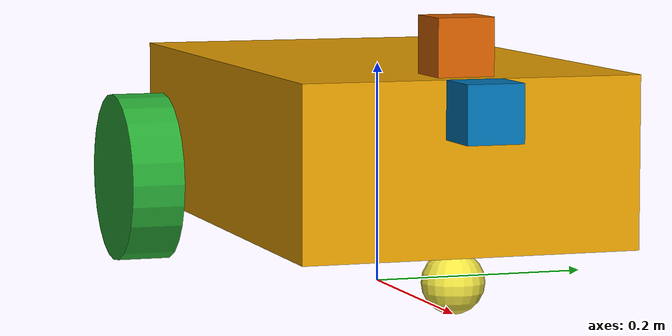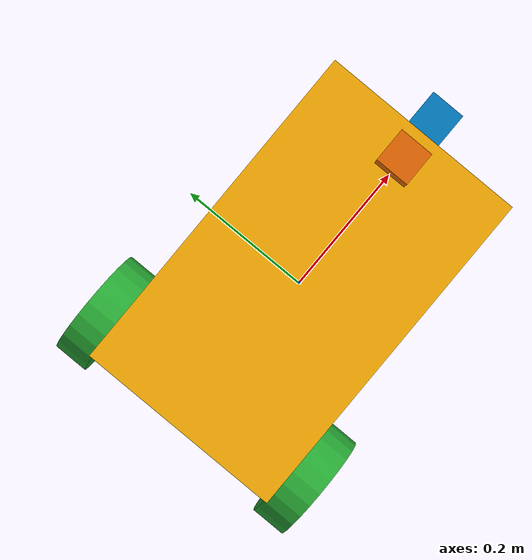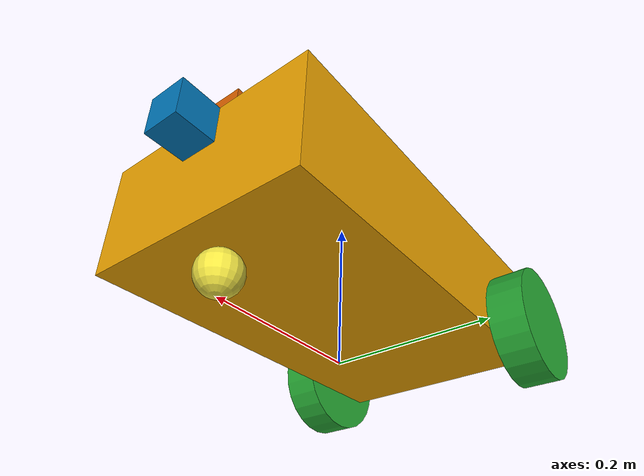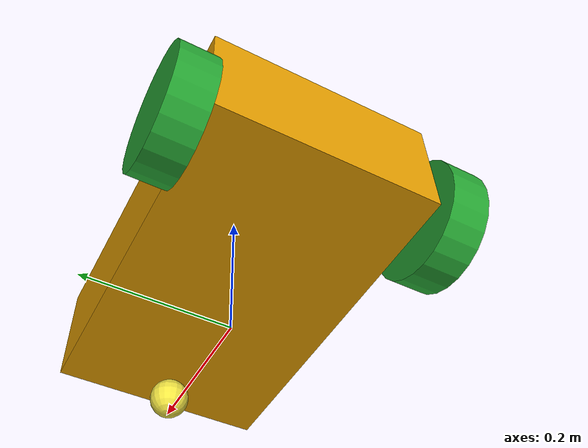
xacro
<?xml version="1.0"?>
<robot xmlns:xacro="http://www.ros.org/wiki/xacro" name="malight">

  <xacro:property name="base_link_height" value="0.15" />
  <xacro:property name="wheel_radius" value="0.08" />
  <xacro:property name="wheel_length" value="0.05" />
  <xacro:property name="camera_link" value="0.05" /> <!-- Size of square 'camera' box -->
  <xacro:property name="laser_link" value="0.05" /> <!-- Size of square 'laser' box -->

  <xacro:macro name="box_inertial_matrix" params="mass w h d">
    <inertial>
      <mass value="${mass}" />
      <inertia ixx="${mass*((h*h)+(d*d))/12}" ixy="0.0" ixz="0.0" iyy="${mass*((w*w)+(d*d))/12}" iyz="0.0" izz="${mass*((w*w)+(h*h))/12}" />
    </inertial>
  </xacro:macro>

  <xacro:macro name="cylinder_inertial_matrix" params="mass r h ">
    <inertial>
      <mass value="${mass}" />
      <inertia ixx="${mass*((3*r*r)+(h*h))/12.0}" ixy="0.0" ixz="0.0" iyy="${mass*((3*r*r)+(h*h))/12.0}" iyz="0.0" izz="${mass*r*r/12.0}" />
    </inertial>
  </xacro:macro>

  <xacro:macro name="sphere_inertial_matrix" params="mass r">
    <inertial>
      <mass value="${mass}" />
      <inertia ixx="${2*(mass*r*r)/5}" ixy="0.0" ixz="0.0" iyy="${2*(mass*r*r)/5}" iyz="0.0" izz="${2*(mass*r*r)/5}" />
    </inertial>
  </xacro:macro>

  <xacro:macro name="wheel" params="name z_offset l r mass">
    <link name="${name}">
      <visual>
      <origin xyz="0 0 ${z_offset}"/>
      <geometry>
        <cylinder length="${l}" radius="${r}" />
      </geometry>
      </visual>
      <collision>
        <origin xyz="0 0 ${z_offset}"/>
        <geometry>
          <cylinder length="${l}" radius="${r}" />
        </geometry>
      </collision>
      <xacro:cylinder_inertial_matrix mass="${mass}" r="${r}" h="${l}"/>
    </link>
  </xacro:macro>

  <link name="base_link">
    <visual>
    <origin xyz="0 0 ${(base_link_height/2.0)+(wheel_radius-0.025)}"/>
    <geometry>
      <box size="0.5 0.3 ${base_link_height}" />
    </geometry>
    </visual>
    <collision>
     <origin xyz="0 0 ${(base_link_height/2.0)+(wheel_radius-0.025)}"/>
     <geometry>
       <box size="0.5 0.3 ${base_link_height}" />
     </geometry>
   </collision>
   <xacro:box_inertial_matrix mass="1.5" w="0.5" h="0.3" d="0.15" />

  </link>

  <xacro:wheel name="left_wheel" z_offset="${wheel_length/2.0}" l="${wheel_length}" r="${wheel_radius}" mass="0.6" />

  <xacro:wheel name="right_wheel" z_offset="${wheel_length/2.0}" l="${wheel_length}" r="${wheel_radius}" mass="0.6" />

  <link name="caster_wheel">
      <visual>
      <origin xyz="0 0 0 "/>
      <geometry>
        <sphere radius="${ (((base_link_height/2.0)+(wheel_radius-0.025))/4)-0.005 }" />
      </geometry>
      </visual>
      <collision>
        <origin xyz="0 0 0"/>
        <geometry>
          <sphere radius="${ (((base_link_height/2.0)+(wheel_radius-0.025))/4)-0.005}" />
        </geometry>
        <surface>
          <friction>
            <ode>
              <mu>0.03</mu>
              <mu2>0.03</mu2>
            </ode>
          </friction>
        </surface>
      </collision>
  </link>

  <!-- Camera -->
  <link name="camera_link">
    <collision>
      <geometry>
      <box size="${camera_link} ${camera_link} ${camera_link}"/>
      </geometry>
    </collision>

    <visual>
      <origin xyz="0 0 0" rpy="0 0 0"/>
      <geometry>
      <box size="${camera_link} ${camera_link} ${camera_link}"/>
      </geometry>
    </visual>

    <inertial>
      <mass value="1e-5" />
      <inertia ixx="1e-6" ixy="0" ixz="0" iyy="1e-6" iyz="0" izz="1e-6" />
    </inertial>
  </link>

  <!-- Laser -->
  <link name='laser_link'>
      <collision>
      		<geometry>
        		<box size="${laser_link} ${laser_link} ${laser_link}"/>
      		</geometry>
      	</collision>
      	<inertial>
      		<mass value="0.5"/>
      		<origin xyz="0 0 0" rpy=" 0 0 0"/>
	      	<inertia ixx="1e-6" ixy="0.0" ixz="0" iyy="1e-6" iyz="0" izz="1e-6" />
     	</inertial>
    	<visual >
      		<origin xyz="0 0 0" rpy=" 0 0 0"/>
      		<geometry>
        		<box size="${laser_link} ${laser_link} ${laser_link}"/>
      		</geometry>
    	</visual>
      </link>

  <joint name="left_wheel_base" type="continuous">
    <parent link="base_link"/>
    <child link="left_wheel"/>
    <origin xyz="-0.2 0.15 ${(base_link_height/2.0)-0.05+(wheel_radius-0.025)}" rpy="-1.57 0 0"/>
    <axis xyz="0 0 1" />
  </joint>

  <joint name="right_wheel_base" type="continuous">
    <parent link="base_link"/>
    <child link="right_wheel"/>
    <origin xyz="-0.2 -0.2 ${(base_link_height/2.0)-0.05+(wheel_radius-0.025)}" rpy="-1.57 0 0"/>
    <axis xyz="0 0 1" />
  </joint>

  <joint name="caster_base" type="fixed">
    <parent link="base_link"/>
    <child link="caster_wheel"/>
    <origin xyz="0.2 0 ${ (((base_link_height/2.0)+(wheel_radius-0.025))-(base_link_height/2))/2 }" />
    <axis xyz="0 0 1" />
  </joint>

  <joint name="camera_joint" type="fixed">
    <axis xyz="0 1 0" />
    <origin xyz=" 0.275 0 0.18" rpy="0 0 0"/>
    <parent link="base_link"/>
    <child link="camera_link"/>
  </joint>

  <joint name="laser_joint" type="fixed">
    <axis xyz="0 1 0" />
    <origin xyz=" 0.205 0 0.23" rpy="0 0 0"/>
    <parent link="base_link"/>
    <child link="laser_link"/>
  </joint>

  <!--gazebo plugin-->

  <!-- camera -->
  <gazebo reference="camera_link">
    <sensor type="camera" name="camera1">
      <update_rate>50.0</update_rate>
      <camera name="head">
        <horizontal_fov>1.3962634</horizontal_fov>
        <image>
          <width>800</width>
          <height>800</height>
          <format>R8G8B8</format>
        </image>
        <clip>
          <near>0.02</near>
          <far>300</far>
        </clip>
        <noise>
          <type>gaussian</type>
          <!-- Noise is sampled independently per pixel on each frame.
               That pixel's noise value is added to each of its color
               channels, which at that point lie in the range [0,1]. -->
          <mean>0.0</mean>
          <stddev>0.007</stddev>
        </noise>
      </camera>
      <plugin name="camera_controller" filename="libgazebo_ros_camera.so">
        <alwaysOn>true</alwaysOn>
        <updateRate>0.0</updateRate>
        <cameraName>rrbot/camera1</cameraName>
        <imageTopicName>image_raw</imageTopicName>
        <cameraInfoTopicName>camera_info</cameraInfoTopicName>
        <frameName>camera_link</frameName>
        <hackBaseline>0.07</hackBaseline>
        <distortionK1>0.0</distortionK1>
        <distortionK2>0.0</distortionK2>
        <distortionK3>0.0</distortionK3>
        <distortionT1>0.0</distortionT1>
        <distortionT2>0.0</distortionT2>
      </plugin>
    </sensor>
  </gazebo>

  <!-- hokuyo laser-->
	<gazebo reference="laser_link">
		<sensor type="ray" name="head_hokuyo_sensor">
		    <pose>0 0 0 0 0 0</pose>
		    <visualize>true</visualize>
		    <update_rate>40</update_rate>
		    <ray>
		        <scan>
		            <horizontal>
		                <samples>720</samples>
		                <resolution>1</resolution>
		                <min_angle>-1.570796</min_angle>
		                <max_angle>1.570796</max_angle>
		            </horizontal>
		        </scan>
		        <range>
		            <min>0.20</min>
		            <max>10.0</max>
		            <resolution>0.02</resolution>
		        </range>
		        <noise>
		            <type>gaussian</type>
		            <mean>0.0</mean>
		            <stddev>0.01</stddev>
		        </noise>
		    </ray>
		    <plugin name="lidar_controller" filename="libgazebo_ros_laser.so">
		        <ros>
		            <namespace>distance</namespace>
		            <remapping>~/out:=lidar</remapping>
		        </ros>
		        <output_type>sensor_msgs/LaserScan</output_type>
		        <radiation_type>infrared</radiation_type>
		        <topicName>/laser</topicName>
		        <frameName>laser_link</frameName>
		    </plugin>
		</sensor>
	</gazebo>

  <gazebo reference="left_wheel">
    <material>green</material>
    <mu1>1500</mu1>
    <mu2>1500</mu2>
    <selfCollide>true</selfCollide>
  </gazebo>

  <gazebo reference="right_wheel">
    <material>green</material>
    <mu1>1500</mu1>
    <mu2>1500</mu2>
    <selfCollide>true</selfCollide>
  </gazebo>

  <!-- diff_drive -->
  <gazebo>
        <plugin name="differential_drive_controller" filename="libgazebo_ros_diff_drive.so">
            <alwaysOn>true</alwaysOn>
            <updateRate>60</updateRate>
            <legacyMode>false</legacyMode>
            <leftJoint>left_wheel_base</leftJoint>
            <rightJoint>right_wheel_base</rightJoint>
            <wheelSeparation>0.35</wheelSeparation>
            <wheelDiameter>0.16</wheelDiameter>
            <commandTopic>cmd_vel</commandTopic>
            <odometryTopic>odom</odometryTopic>
            <odometryFrame>odom</odometryFrame>
            <robotBaseFrame>base_link</robotBaseFrame>
            <publishWheelTF>false</publishWheelTF>
            <publishWheelJointState>false</publishWheelJointState>
            <rosDebugLevel>na</rosDebugLevel>
            <wheelAcceleration>1</wheelAcceleration>
            <wheelTorque>50</wheelTorque>
            <odometrySource>1</odometrySource>
            <publishOdomTF>true</publishOdomTF>
            <publishTf>1</publishTf>
        </plugin>
    </gazebo>

</robot>
